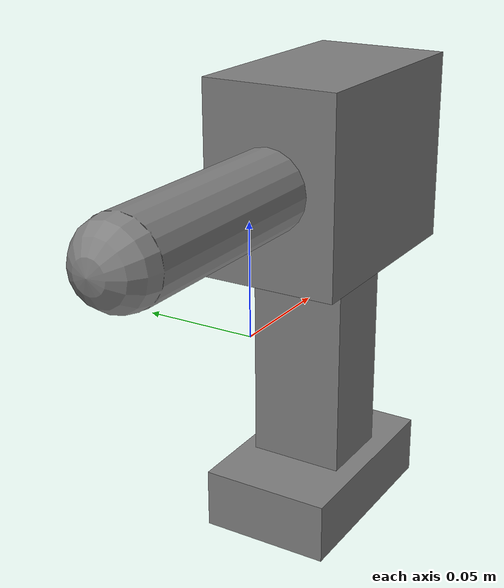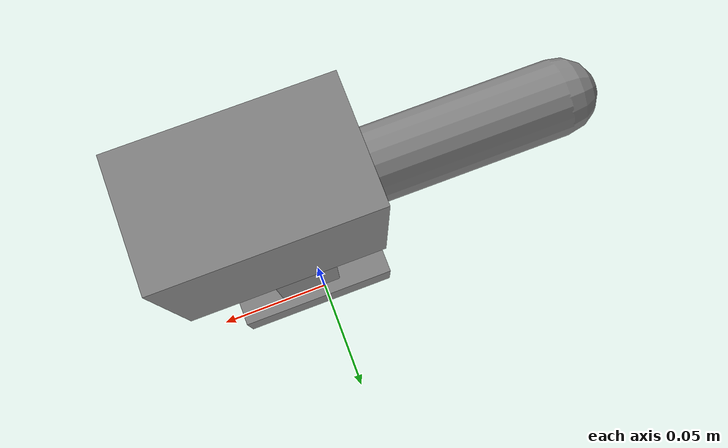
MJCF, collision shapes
<mujoco model="ycb_sim_power_drill">
  <asset>
    <mesh name="power_drill_mesh" file="meshes/035_power_drill.msh"/>
    <texture name="power_drill_texture" type="2d" file="textures/035_power_drill.png"/>
    <material name="power_drill_material" texture="power_drill_texture"/>
  </asset>
  <worldbody>
    <body>
      <body name="object">
        <!-- YCB_sim's drill lies in XY; rotate it so the battery-to-motor axis is +Z. -->
        <geom name="visual" type="mesh" mesh="power_drill_mesh" material="power_drill_material"
              pos="0.014 -0.002 0.014" quat="0.7071067811865476 0.7071067811865476 0 0"
              group="1" contype="0" conaffinity="0" mass="0"/>
        <!-- Separate contacts leave the narrow grip exposed; one convex mesh would fill the trigger gap. -->
        <geom name="battery" type="box" pos="0.005 -0.028 -0.057" size="0.041 0.026 0.012"
              group="0" rgba="0.5 0.5 0.5 0"/>
        <geom name="handle" type="box" pos="0.007 -0.027 -0.013" size="0.016 0.019 0.044"
              group="0" rgba="0.5 0.5 0.5 0"/>
        <geom name="motor" type="box" pos="0.014 -0.027 0.075" size="0.045 0.027 0.038"
              group="0" rgba="0.5 0.5 0.5 0"/>
        <geom name="chuck" type="capsule" fromto="-0.115 -0.027 0.075 -0.025 -0.027 0.075" size="0.016"
              group="0" rgba="0.5 0.5 0.5 0"/>
      </body>
      <site name="bottom_site" pos="0 0 -0.069" size="0.005" rgba="0 0 0 0"/>
      <site name="top_site" pos="0 0 0.113" size="0.005" rgba="0 0 0 0"/>
      <site name="horizontal_radius_site" pos="0.06 0 0" size="0.005" rgba="0 0 0 0"/>
    </body>
  </worldbody>
</mujoco>
